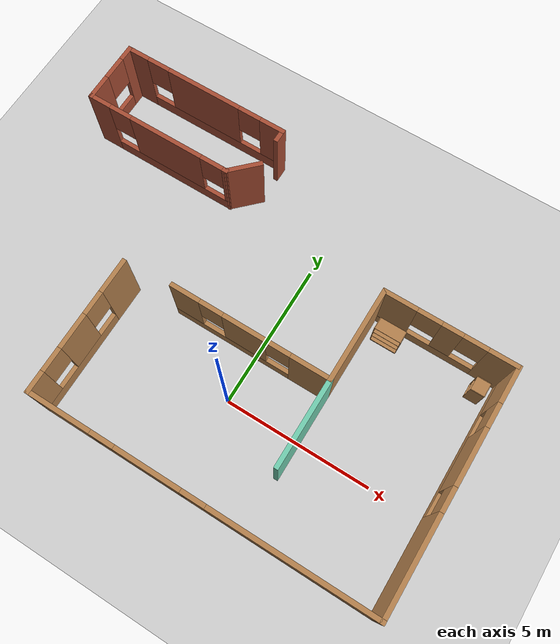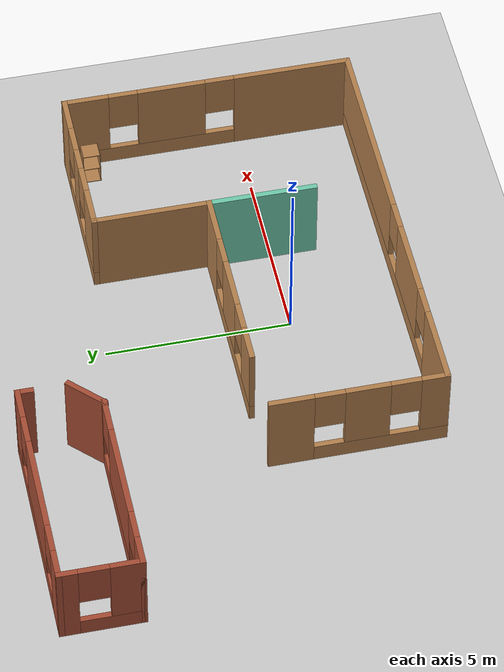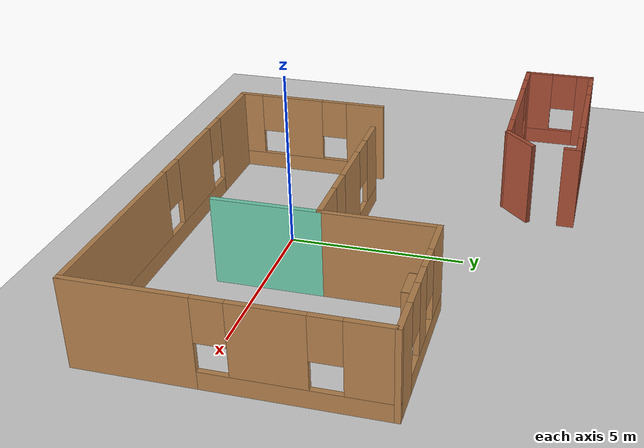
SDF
<sdf version="1.6">
 <world name="default">
  <light name="sun" type="directional">
   <pose>0 0 10 0 -0 0</pose>
   <diffuse>0.8 0.8 0.8 1</diffuse>
   <specular>0.2 0.2 0.2 1</specular>
   <attenuation>
    <range>1000</range>
    <constant>0.9</constant>
    <linear>0.01</linear>
    <quadratic>0.001</quadratic>
   </attenuation>
   <direction>-0.5 0.1 -0.9</direction>
  </light>
  <model name="ground_plane">
   <static>1</static>
   <link name="link">
    <collision name="collision">
     <geometry><plane><normal>0 0 1</normal><size>100 100</size></plane></geometry>
     <surface><friction><ode><mu>100</mu><mu2>50</mu2></ode></friction></surface>
    </collision>
    <visual name="visual">
     <cast_shadows>0</cast_shadows>
     <geometry><plane><normal>0 0 1</normal><size>100 100</size></plane></geometry>
     <material>
      <script><uri>file://media/materials/scripts/gazebo.material</uri><name>Gazebo/Grey</name></script>
     </material>
    </visual>
   </link>
  </model>
  <gravity>0 0 -9.8</gravity>
  <magnetic_field>6e-06 2.3e-05 -4.2e-05</magnetic_field>
  <atmosphere type="adiabatic"/>
  <physics name="default_physics" default="0" type="ode">
   <max_step_size>0.001</max_step_size>
   <real_time_factor>1</real_time_factor>
   <real_time_update_rate>1000</real_time_update_rate>
  </physics>
  <scene><ambient>0.4 0.4 0.4 1</ambient><background>0.7 0.7 0.7 1</background><shadows>1</shadows></scene>
  <spherical_coordinates>
   <surface_model>EARTH_WGS84</surface_model>
   <latitude_deg>0</latitude_deg>
   <longitude_deg>0</longitude_deg>
   <elevation>0</elevation>
   <heading_deg>0</heading_deg>
  </spherical_coordinates>
  <model name="buildingA">
   <pose>-5.69714 6.67517 0 0 -0 0</pose>
   <link name="Wall_0">
    <pose>-2.95444 0.015533 0 0 0 -1.5708</pose>
    <visual name="Wall_0_Visual_0">
     <pose>-0.85042 0 1.25 0 -0 0</pose>
     <geometry><box><size>0.549159 0.15 2.5</size></box></geometry>
     <material>
      <script><uri>file://media/materials/scripts/gazebo.material</uri><name>Gazebo/Bricks</name></script>
      <ambient>1 1 1 1</ambient>
     </material>
     <meta><layer>0</layer></meta>
    </visual>
    <collision name="Wall_0_Collision_0">
     <geometry><box><size>0.549159 0.15 2.5</size></box></geometry>
     <pose>-0.85042 0 1.25 0 -0 0</pose>
    </collision>
    <visual name="Wall_0_Visual_1">
     <pose>0.27458 0 0.25 0 -0 0</pose>
     <geometry><box><size>1.70084 0.15 0.5</size></box></geometry>
     <material>
      <script><uri>file://media/materials/scripts/gazebo.material</uri><name>Gazebo/Bricks</name></script>
      <ambient>1 1 1 1</ambient>
     </material>
     <meta><layer>0</layer></meta>
    </visual>
    <collision name="Wall_0_Collision_1">
     <geometry><box><size>1.70084 0.15 0.5</size></box></geometry>
     <pose>0.27458 0 0.25 0 -0 0</pose>
    </collision>
    <visual name="Wall_0_Visual_2">
     <pose>0.67458 0 1.5 0 -0 0</pose>
     <geometry><box><size>0.900841 0.15 2</size></box></geometry>
     <material>
      <script><uri>file://media/materials/scripts/gazebo.material</uri><name>Gazebo/Bricks</name></script>
      <ambient>1 1 1 1</ambient>
     </material>
     <meta><layer>0</layer></meta>
    </visual>
    <collision name="Wall_0_Collision_2">
     <geometry><box><size>0.900841 0.15 2</size></box></geometry>
     <pose>0.67458 0 1.5 0 -0 0</pose>
    </collision>
    <visual name="Wall_0_Visual_3">
     <pose>-0.175841 0 1.9 0 -0 0</pose>
     <geometry><box><size>0.8 0.15 1.2</size></box></geometry>
     <material>
      <script><uri>file://media/materials/scripts/gazebo.material</uri><name>Gazebo/Bricks</name></script>
      <ambient>1 1 1 1</ambient>
     </material>
     <meta><layer>0</layer></meta>
    </visual>
    <collision name="Wall_0_Collision_3">
     <geometry><box><size>0.8 0.15 1.2</size></box></geometry>
     <pose>-0.175841 0 1.9 0 -0 0</pose>
    </collision>
   </link>
   <link name="Wall_1">
    <pose>-0.404441 -1.03447 0 0 -0 0</pose>
    <visual name="Wall_1_Visual_0">
     <pose>-2.22075 0 1.25 0 -0 0</pose>
     <geometry><box><size>0.808503 0.15 2.5</size></box></geometry>
     <material>
      <script><uri>file://media/materials/scripts/gazebo.material</uri><name>Gazebo/Bricks</name></script>
      <ambient>1 1 1 1</ambient>
     </material>
     <meta><layer>0</layer></meta>
    </visual>
    <collision name="Wall_1_Collision_0">
     <geometry><box><size>0.808503 0.15 2.5</size></box></geometry>
     <pose>-2.22075 0 1.25 0 -0 0</pose>
    </collision>
    <visual name="Wall_1_Visual_1">
     <pose>0.404251 0 0.25 0 -0 0</pose>
     <geometry><box><size>4.4415 0.15 0.5</size></box></geometry>
     <material>
      <script><uri>file://media/materials/scripts/gazebo.material</uri><name>Gazebo/Bricks</name></script>
      <ambient>1 1 1 1</ambient>
     </material>
     <meta><layer>0</layer></meta>
    </visual>
    <collision name="Wall_1_Collision_1">
     <geometry><box><size>4.4415 0.15 0.5</size></box></geometry>
     <pose>0.404251 0 0.25 0 -0 0</pose>
    </collision>
    <visual name="Wall_1_Visual_2">
     <pose>0.303213 0 1.5 0 -0 0</pose>
     <geometry><box><size>2.63942 0.15 2</size></box></geometry>
     <material>
      <script><uri>file://media/materials/scripts/gazebo.material</uri><name>Gazebo/Bricks</name></script>
      <ambient>1 1 1 1</ambient>
     </material>
     <meta><layer>0</layer></meta>
    </visual>
    <collision name="Wall_1_Collision_2">
     <geometry><box><size>2.63942 0.15 2</size></box></geometry>
     <pose>0.303213 0 1.5 0 -0 0</pose>
    </collision>
    <visual name="Wall_1_Visual_3">
     <pose>2.52396 0 1.5 0 -0 0</pose>
     <geometry><box><size>0.202076 0.15 2</size></box></geometry>
     <material>
      <script><uri>file://media/materials/scripts/gazebo.material</uri><name>Gazebo/Bricks</name></script>
      <ambient>1 1 1 1</ambient>
     </material>
     <meta><layer>0</layer></meta>
    </visual>
    <collision name="Wall_1_Collision_3">
     <geometry><box><size>0.202076 0.15 2</size></box></geometry>
     <pose>2.52396 0 1.5 0 -0 0</pose>
    </collision>
    <visual name="Wall_1_Visual_4">
     <pose>-1.4165 0 1.9 0 -0 0</pose>
     <geometry><box><size>0.8 0.15 1.2</size></box></geometry>
     <material>
      <script><uri>file://media/materials/scripts/gazebo.material</uri><name>Gazebo/Bricks</name></script>
      <ambient>1 1 1 1</ambient>
     </material>
     <meta><layer>0</layer></meta>
    </visual>
    <collision name="Wall_1_Collision_4">
     <geometry><box><size>0.8 0.15 1.2</size></box></geometry>
     <pose>-1.4165 0 1.9 0 -0 0</pose>
    </collision>
    <visual name="Wall_1_Visual_5">
     <pose>2.02292 0 1.9 0 -0 0</pose>
     <geometry><box><size>0.8 0.15 1.2</size></box></geometry>
     <material>
      <script><uri>file://media/materials/scripts/gazebo.material</uri><name>Gazebo/Bricks</name></script>
      <ambient>1 1 1 1</ambient>
     </material>
     <meta><layer>0</layer></meta>
    </visual>
    <collision name="Wall_1_Collision_5">
     <geometry><box><size>0.8 0.15 1.2</size></box></geometry>
     <pose>2.02292 0 1.9 0 -0 0</pose>
    </collision>
   </link>
   <link name="Wall_2">
    <collision name="Wall_2_Collision">
     <geometry><box><size>1.25 0.15 2.5</size></box></geometry>
     <pose>0 0 1.25 0 -0 0</pose>
    </collision>
    <visual name="Wall_2_Visual">
     <pose>0 0 1.25 0 -0 0</pose>
     <geometry><box><size>1.25 0.15 2.5</size></box></geometry>
     <material>
      <script><uri>file://media/materials/scripts/gazebo.material</uri><name>Gazebo/Bricks</name></script>
      <ambient>1 1 1 1</ambient>
     </material>
     <meta><layer>0</layer></meta>
    </visual>
    <pose>2.53447 -0.645558 0 0 -0 0.785398</pose>
   </link>
   <link name="Wall_4">
    <pose>-0.029441 1.06553 0 0 -0 0</pose>
    <visual name="Wall_4_Visual_0">
     <pose>-2.58569 0 1.25 0 -0 0</pose>
     <geometry><box><size>0.828616 0.15 2.5</size></box></geometry>
     <material>
      <script><uri>file://media/materials/scripts/gazebo.material</uri><name>Gazebo/Bricks</name></script>
      <ambient>1 1 1 1</ambient>
     </material>
     <meta><layer>0</layer></meta>
    </visual>
    <collision name="Wall_4_Collision_0">
     <geometry><box><size>0.828616 0.15 2.5</size></box></geometry>
     <pose>-2.58569 0 1.25 0 -0 0</pose>
    </collision>
    <visual name="Wall_4_Visual_1">
     <pose>0.414308 0 0.25 0 -0 0</pose>
     <geometry><box><size>5.17138 0.15 0.5</size></box></geometry>
     <material>
      <script><uri>file://media/materials/scripts/gazebo.material</uri><name>Gazebo/Bricks</name></script>
      <ambient>1 1 1 1</ambient>
     </material>
     <meta><layer>0</layer></meta>
    </visual>
    <collision name="Wall_4_Collision_1">
     <geometry><box><size>5.17138 0.15 0.5</size></box></geometry>
     <pose>0.414308 0 0.25 0 -0 0</pose>
    </collision>
    <visual name="Wall_4_Visual_2">
     <pose>-0.03156 0 1.5 0 -0 0</pose>
     <geometry><box><size>2.67965 0.15 2</size></box></geometry>
     <material>
      <script><uri>file://media/materials/scripts/gazebo.material</uri><name>Gazebo/Bricks</name></script>
      <ambient>1 1 1 1</ambient>
     </material>
     <meta><layer>0</layer></meta>
    </visual>
    <collision name="Wall_4_Collision_2">
     <geometry><box><size>2.67965 0.15 2</size></box></geometry>
     <pose>-0.03156 0 1.5 0 -0 0</pose>
    </collision>
    <visual name="Wall_4_Visual_3">
     <pose>2.55413 0 1.5 0 -0 0</pose>
     <geometry><box><size>0.891736 0.15 2</size></box></geometry>
     <material>
      <script><uri>file://media/materials/scripts/gazebo.material</uri><name>Gazebo/Bricks</name></script>
      <ambient>1 1 1 1</ambient>
     </material>
     <meta><layer>0</layer></meta>
    </visual>
    <collision name="Wall_4_Collision_3">
     <geometry><box><size>0.891736 0.15 2</size></box></geometry>
     <pose>2.55413 0 1.5 0 -0 0</pose>
    </collision>
    <visual name="Wall_4_Visual_4">
     <pose>-1.77138 0 1.9 0 -0 0</pose>
     <geometry><box><size>0.8 0.15 1.2</size></box></geometry>
     <material>
      <script><uri>file://media/materials/scripts/gazebo.material</uri><name>Gazebo/Bricks</name></script>
      <ambient>1 1 1 1</ambient>
     </material>
     <meta><layer>0</layer></meta>
    </visual>
    <collision name="Wall_4_Collision_4">
     <geometry><box><size>0.8 0.15 1.2</size></box></geometry>
     <pose>-1.77138 0 1.9 0 -0 0</pose>
    </collision>
    <visual name="Wall_4_Visual_5">
     <pose>1.70826 0 1.9 0 -0 0</pose>
     <geometry><box><size>0.8 0.15 1.2</size></box></geometry>
     <material>
      <script><uri>file://media/materials/scripts/gazebo.material</uri><name>Gazebo/Bricks</name></script>
      <ambient>1 1 1 1</ambient>
     </material>
     <meta><layer>0</layer></meta>
    </visual>
    <collision name="Wall_4_Collision_5">
     <geometry><box><size>0.8 0.15 1.2</size></box></geometry>
     <pose>1.70826 0 1.9 0 -0 0</pose>
    </collision>
   </link>
   <link name="Wall_5">
    <collision name="Wall_5_Collision">
     <geometry><box><size>0.5 0.15 2.5</size></box></geometry>
     <pose>0 0 1.25 0 -0 0</pose>
    </collision>
    <visual name="Wall_5_Visual">
     <pose>0 0 1.25 0 -0 0</pose>
     <geometry><box><size>0.5 0.15 2.5</size></box></geometry>
     <material>
      <script><uri>file://media/materials/scripts/gazebo.material</uri><name>Gazebo/Bricks</name></script>
      <ambient>1 1 1 1</ambient>
     </material>
     <meta><layer>0</layer></meta>
    </visual>
    <pose>2.89556 0.890533 0 0 0 -1.5708</pose>
   </link>
   <static>1</static>
  </model>
  <model name="buildingb">
   <pose>1.18476 0.84989 0 0 -0 0</pose>
   <link name="Wall_10">
    <pose>3.5 3.925 0 0 -0 3.14159</pose>
    <visual name="Wall_10_Visual_0">
     <pose>-1.73572 0 1.25 0 -0 0</pose>
     <geometry><box><size>1.02856 0.15 2.5</size></box></geometry>
     <material>
      <script><uri>file://media/materials/scripts/gazebo.material</uri><name>Gazebo/Wood</name></script>
      <ambient>1 1 1 1</ambient>
     </material>
     <meta><layer>0</layer></meta>
    </visual>
    <collision name="Wall_10_Collision_0">
     <geometry><box><size>1.02856 0.15 2.5</size></box></geometry>
     <pose>-1.73572 0 1.25 0 -0 0</pose>
    </collision>
    <visual name="Wall_10_Visual_1">
     <pose>0.514277 0 0.25 0 -0 0</pose>
     <geometry><box><size>3.47145 0.15 0.5</size></box></geometry>
     <material>
      <script><uri>file://media/materials/scripts/gazebo.material</uri><name>Gazebo/Wood</name></script>
      <ambient>1 1 1 1</ambient>
     </material>
     <meta><layer>0</layer></meta>
    </visual>
    <collision name="Wall_10_Collision_1">
     <geometry><box><size>3.47145 0.15 0.5</size></box></geometry>
     <pose>0.514277 0 0.25 0 -0 0</pose>
    </collision>
    <visual name="Wall_10_Visual_2">
     <pose>-0.077243 0 1.5 0 -0 0</pose>
     <geometry><box><size>0.688404 0.15 2</size></box></geometry>
     <material>
      <script><uri>file://media/materials/scripts/gazebo.material</uri><name>Gazebo/Wood</name></script>
      <ambient>1 1 1 1</ambient>
     </material>
     <meta><layer>0</layer></meta>
    </visual>
    <collision name="Wall_10_Collision_2">
     <geometry><box><size>0.688404 0.15 2</size></box></geometry>
     <pose>-0.077243 0 1.5 0 -0 0</pose>
    </collision>
    <visual name="Wall_10_Visual_3">
     <pose>1.65848 0 1.5 0 -0 0</pose>
     <geometry><box><size>1.18304 0.15 2</size></box></geometry>
     <material>
      <script><uri>file://media/materials/scripts/gazebo.material</uri><name>Gazebo/Wood</name></script>
      <ambient>1 1 1 1</ambient>
     </material>
     <meta><layer>0</layer></meta>
    </visual>
    <collision name="Wall_10_Collision_3">
     <geometry><box><size>1.18304 0.15 2</size></box></geometry>
     <pose>1.65848 0 1.5 0 -0 0</pose>
    </collision>
    <visual name="Wall_10_Visual_4">
     <pose>-0.821445 0 1.9 0 -0 0</pose>
     <geometry><box><size>0.8 0.15 1.2</size></box></geometry>
     <material>
      <script><uri>file://media/materials/scripts/gazebo.material</uri><name>Gazebo/Wood</name></script>
      <ambient>1 1 1 1</ambient>
     </material>
     <meta><layer>0</layer></meta>
    </visual>
    <collision name="Wall_10_Collision_4">
     <geometry><box><size>0.8 0.15 1.2</size></box></geometry>
     <pose>-0.821445 0 1.9 0 -0 0</pose>
    </collision>
    <visual name="Wall_10_Visual_5">
     <pose>0.666959 0 1.9 0 -0 0</pose>
     <geometry><box><size>0.8 0.15 1.2</size></box></geometry>
     <material>
      <script><uri>file://media/materials/scripts/gazebo.material</uri><name>Gazebo/Wood</name></script>
      <ambient>1 1 1 1</ambient>
     </material>
     <meta><layer>0</layer></meta>
    </visual>
    <collision name="Wall_10_Collision_5">
     <geometry><box><size>0.8 0.15 1.2</size></box></geometry>
     <pose>0.666959 0 1.9 0 -0 0</pose>
    </collision>
   </link>
   <link name="Wall_11">
    <collision name="Wall_11_Collision">
     <geometry><box><size>3.25 0.15 2.5</size></box></geometry>
     <pose>0 0 1.25 0 -0 0</pose>
    </collision>
    <visual name="Wall_11_Visual">
     <pose>0 0 1.25 0 -0 0</pose>
     <geometry><box><size>3.25 0.15 2.5</size></box></geometry>
     <material>
      <script><uri>file://media/materials/scripts/gazebo.material</uri><name>Gazebo/Wood</name></script>
      <ambient>1 1 1 1</ambient>
     </material>
     <meta><layer>0</layer></meta>
    </visual>
    <pose>1.325 2.375 0 0 0 -1.5708</pose>
   </link>
   <link name="Wall_12">
    <pose>-1.35 0.825 0 0 -0 3.14159</pose>
    <visual name="Wall_12_Visual_0">
     <pose>-2.05743 0 1.25 0 -0 0</pose>
     <geometry><box><size>1.38513 0.15 2.5</size></box></geometry>
     <material>
      <script><uri>file://media/materials/scripts/gazebo.material</uri><name>Gazebo/Wood</name></script>
      <ambient>1 1 1 1</ambient>
     </material>
     <meta><layer>0</layer></meta>
    </visual>
    <collision name="Wall_12_Collision_0">
     <geometry><box><size>1.38513 0.15 2.5</size></box></geometry>
     <pose>-2.05743 0 1.25 0 -0 0</pose>
    </collision>
    <visual name="Wall_12_Visual_1">
     <pose>0.692565 0 0.25 0 -0 0</pose>
     <geometry><box><size>4.11487 0.15 0.5</size></box></geometry>
     <material>
      <script><uri>file://media/materials/scripts/gazebo.material</uri><name>Gazebo/Wood</name></script>
      <ambient>1 1 1 1</ambient>
     </material>
     <meta><layer>0</layer></meta>
    </visual>
    <collision name="Wall_12_Collision_1">
     <geometry><box><size>4.11487 0.15 0.5</size></box></geometry>
     <pose>0.692565 0 0.25 0 -0 0</pose>
    </collision>
    <visual name="Wall_12_Visual_2">
     <pose>0.181604 0 1.5 0 -0 0</pose>
     <geometry><box><size>1.49295 0.15 2</size></box></geometry>
     <material>
      <script><uri>file://media/materials/scripts/gazebo.material</uri><name>Gazebo/Wood</name></script>
      <ambient>1 1 1 1</ambient>
     </material>
     <meta><layer>0</layer></meta>
    </visual>
    <collision name="Wall_12_Collision_2">
     <geometry><box><size>1.49295 0.15 2</size></box></geometry>
     <pose>0.181604 0 1.5 0 -0 0</pose>
    </collision>
    <visual name="Wall_12_Visual_3">
     <pose>2.23904 0 1.5 0 -0 0</pose>
     <geometry><box><size>1.02192 0.15 2</size></box></geometry>
     <material>
      <script><uri>file://media/materials/scripts/gazebo.material</uri><name>Gazebo/Wood</name></script>
      <ambient>1 1 1 1</ambient>
     </material>
     <meta><layer>0</layer></meta>
    </visual>
    <collision name="Wall_12_Collision_3">
     <geometry><box><size>1.02192 0.15 2</size></box></geometry>
     <pose>2.23904 0 1.5 0 -0 0</pose>
    </collision>
    <visual name="Wall_12_Visual_4">
     <pose>-0.964869 0 1.9 0 -0 0</pose>
     <geometry><box><size>0.8 0.15 1.2</size></box></geometry>
     <material>
      <script><uri>file://media/materials/scripts/gazebo.material</uri><name>Gazebo/Wood</name></script>
      <ambient>1 1 1 1</ambient>
     </material>
     <meta><layer>0</layer></meta>
    </visual>
    <collision name="Wall_12_Collision_4">
     <geometry><box><size>0.8 0.15 1.2</size></box></geometry>
     <pose>-0.964869 0 1.9 0 -0 0</pose>
    </collision>
    <visual name="Wall_12_Visual_5">
     <pose>1.32808 0 1.9 0 -0 0</pose>
     <geometry><box><size>0.8 0.15 1.2</size></box></geometry>
     <material>
      <script><uri>file://media/materials/scripts/gazebo.material</uri><name>Gazebo/Wood</name></script>
      <ambient>1 1 1 1</ambient>
     </material>
     <meta><layer>0</layer></meta>
    </visual>
    <collision name="Wall_12_Collision_5">
     <geometry><box><size>0.8 0.15 1.2</size></box></geometry>
     <pose>1.32808 0 1.9 0 -0 0</pose>
    </collision>
   </link>
   <link name="Wall_14">
    <collision name="Wall_14_Collision">
     <geometry><box><size>3 0.15 2.5</size></box></geometry>
     <pose>0 0 1.25 0 -0 0</pose>
    </collision>
    <visual name="Wall_14_Visual">
     <pose>0 0 1.25 0 -0 0</pose>
     <geometry><box><size>3 0.15 2.5</size></box></geometry>
     <material>
      <script><uri>file://media/materials/scripts/gazebo.material</uri><name>Gazebo/Grey</name></script>
      <ambient>0.435294 0.796078 0.67451 1</ambient>
     </material>
     <meta><layer>0</layer></meta>
    </visual>
    <pose>1.325 -0.6 0 0 0 -1.5708</pose>
   </link>
   <link name="Wall_7">
    <pose>-5.675 -1.625 0 0 0 -1.5708</pose>
    <visual name="Wall_7_Visual_0">
     <pose>-1.77318 0 1.25 0 -0 0</pose>
     <geometry><box><size>1.20363 0.15 2.5</size></box></geometry>
     <material>
      <script><uri>file://media/materials/scripts/gazebo.material</uri><name>Gazebo/Wood</name></script>
      <ambient>1 1 1 1</ambient>
     </material>
     <meta><layer>0</layer></meta>
    </visual>
    <collision name="Wall_7_Collision_0">
     <geometry><box><size>1.20363 0.15 2.5</size></box></geometry>
     <pose>-1.77318 0 1.25 0 -0 0</pose>
    </collision>
    <visual name="Wall_7_Visual_1">
     <pose>0.601816 0 0.25 0 -0 0</pose>
     <geometry><box><size>3.54637 0.15 0.5</size></box></geometry>
     <material>
      <script><uri>file://media/materials/scripts/gazebo.material</uri><name>Gazebo/Wood</name></script>
      <ambient>1 1 1 1</ambient>
     </material>
     <meta><layer>0</layer></meta>
    </visual>
    <collision name="Wall_7_Collision_1">
     <geometry><box><size>3.54637 0.15 0.5</size></box></geometry>
     <pose>0.601816 0 0.25 0 -0 0</pose>
    </collision>
    <visual name="Wall_7_Visual_2">
     <pose>0.224254 0 1.5 0 -0 0</pose>
     <geometry><box><size>1.19124 0.15 2</size></box></geometry>
     <material>
      <script><uri>file://media/materials/scripts/gazebo.material</uri><name>Gazebo/Wood</name></script>
      <ambient>1 1 1 1</ambient>
     </material>
     <meta><layer>0</layer></meta>
    </visual>
    <collision name="Wall_7_Collision_2">
     <geometry><box><size>1.19124 0.15 2</size></box></geometry>
     <pose>0.224254 0 1.5 0 -0 0</pose>
    </collision>
    <visual name="Wall_7_Visual_3">
     <pose>1.99744 0 1.5 0 -0 0</pose>
     <geometry><box><size>0.755125 0.15 2</size></box></geometry>
     <material>
      <script><uri>file://media/materials/scripts/gazebo.material</uri><name>Gazebo/Wood</name></script>
      <ambient>1 1 1 1</ambient>
     </material>
     <meta><layer>0</layer></meta>
    </visual>
    <collision name="Wall_7_Collision_3">
     <geometry><box><size>0.755125 0.15 2</size></box></geometry>
     <pose>1.99744 0 1.5 0 -0 0</pose>
    </collision>
    <visual name="Wall_7_Visual_4">
     <pose>-0.771368 0 1.9 0 -0 0</pose>
     <geometry><box><size>0.8 0.15 1.2</size></box></geometry>
     <material>
      <script><uri>file://media/materials/scripts/gazebo.material</uri><name>Gazebo/Wood</name></script>
      <ambient>1 1 1 1</ambient>
     </material>
     <meta><layer>0</layer></meta>
    </visual>
    <collision name="Wall_7_Collision_4">
     <geometry><box><size>0.8 0.15 1.2</size></box></geometry>
     <pose>-0.771368 0 1.9 0 -0 0</pose>
    </collision>
    <visual name="Wall_7_Visual_5">
     <pose>1.21988 0 1.9 0 -0 0</pose>
     <geometry><box><size>0.8 0.15 1.2</size></box></geometry>
     <material>
      <script><uri>file://media/materials/scripts/gazebo.material</uri><name>Gazebo/Wood</name></script>
      <ambient>1 1 1 1</ambient>
     </material>
     <meta><layer>0</layer></meta>
    </visual>
    <collision name="Wall_7_Collision_5">
     <geometry><box><size>0.8 0.15 1.2</size></box></geometry>
     <pose>1.21988 0 1.9 0 -0 0</pose>
    </collision>
   </link>
   <link name="Wall_8">
    <pose>0 -3.925 0 0 -0 0</pose>
    <visual name="Wall_8_Visual_0">
     <pose>-4.64534 0 1.25 0 -0 0</pose>
     <geometry><box><size>2.20931 0.15 2.5</size></box></geometry>
     <material>
      <script><uri>file://media/materials/scripts/gazebo.material</uri><name>Gazebo/Wood</name></script>
      <ambient>1 1 1 1</ambient>
     </material>
     <meta><layer>0</layer></meta>
    </visual>
    <collision name="Wall_8_Collision_0">
     <geometry><box><size>2.20931 0.15 2.5</size></box></geometry>
     <pose>-4.64534 0 1.25 0 -0 0</pose>
    </collision>
    <visual name="Wall_8_Visual_1">
     <pose>1.10465 0 0.25 0 -0 0</pose>
     <geometry><box><size>9.29069 0.15 0.5</size></box></geometry>
     <material>
      <script><uri>file://media/materials/scripts/gazebo.material</uri><name>Gazebo/Wood</name></script>
      <ambient>1 1 1 1</ambient>
     </material>
     <meta><layer>0</layer></meta>
    </visual>
    <collision name="Wall_8_Collision_1">
     <geometry><box><size>9.29069 0.15 0.5</size></box></geometry>
     <pose>1.10465 0 0.25 0 -0 0</pose>
    </collision>
    <visual name="Wall_8_Visual_2">
     <pose>-1.64223 0 1.5 0 -0 0</pose>
     <geometry><box><size>2.19692 0.15 2</size></box></geometry>
     <material>
      <script><uri>file://media/materials/scripts/gazebo.material</uri><name>Gazebo/Wood</name></script>
      <ambient>1 1 1 1</ambient>
     </material>
     <meta><layer>0</layer></meta>
    </visual>
    <collision name="Wall_8_Collision_2">
     <geometry><box><size>2.19692 0.15 2</size></box></geometry>
     <pose>-1.64223 0 1.5 0 -0 0</pose>
    </collision>
    <visual name="Wall_8_Visual_3">
     <pose>3.00312 0 1.5 0 -0 0</pose>
     <geometry><box><size>5.49377 0.15 2</size></box></geometry>
     <material>
      <script><uri>file://media/materials/scripts/gazebo.material</uri><name>Gazebo/Wood</name></script>
      <ambient>1 1 1 1</ambient>
     </material>
     <meta><layer>0</layer></meta>
    </visual>
    <collision name="Wall_8_Collision_3">
     <geometry><box><size>5.49377 0.15 2</size></box></geometry>
     <pose>3.00312 0 1.5 0 -0 0</pose>
    </collision>
    <visual name="Wall_8_Visual_4">
     <pose>-3.14069 0 1.9 0 -0 0</pose>
     <geometry><box><size>0.8 0.15 1.2</size></box></geometry>
     <material>
      <script><uri>file://media/materials/scripts/gazebo.material</uri><name>Gazebo/Wood</name></script>
      <ambient>1 1 1 1</ambient>
     </material>
     <meta><layer>0</layer></meta>
    </visual>
    <collision name="Wall_8_Collision_4">
     <geometry><box><size>0.8 0.15 1.2</size></box></geometry>
     <pose>-3.14069 0 1.9 0 -0 0</pose>
    </collision>
    <visual name="Wall_8_Visual_5">
     <pose>-0.143768 0 1.9 0 -0 0</pose>
     <geometry><box><size>0.8 0.15 1.2</size></box></geometry>
     <material>
      <script><uri>file://media/materials/scripts/gazebo.material</uri><name>Gazebo/Wood</name></script>
      <ambient>1 1 1 1</ambient>
     </material>
     <meta><layer>0</layer></meta>
    </visual>
    <collision name="Wall_8_Collision_5">
     <geometry><box><size>0.8 0.15 1.2</size></box></geometry>
     <pose>-0.143768 0 1.9 0 -0 0</pose>
    </collision>
   </link>
   <link name="Wall_9">
    <pose>5.675 0 0 0 -0 1.5708</pose>
    <visual name="Wall_9_Visual_0">
     <pose>-2.3754 0 1.25 0 -0 0</pose>
     <geometry><box><size>3.24921 0.15 2.5</size></box></geometry>
     <material>
      <script><uri>file://media/materials/scripts/gazebo.material</uri><name>Gazebo/Wood</name></script>
      <ambient>1 1 1 1</ambient>
     </material>
     <meta><layer>0</layer></meta>
    </visual>
    <collision name="Wall_9_Collision_0">
     <geometry><box><size>3.24921 0.15 2.5</size></box></geometry>
     <pose>-2.3754 0 1.25 0 -0 0</pose>
    </collision>
    <visual name="Wall_9_Visual_1">
     <pose>1.6246 0 0.25 0 -0 0</pose>
     <geometry><box><size>4.75079 0.15 0.5</size></box></geometry>
     <material>
      <script><uri>file://media/materials/scripts/gazebo.material</uri><name>Gazebo/Wood</name></script>
      <ambient>1 1 1 1</ambient>
     </material>
     <meta><layer>0</layer></meta>
    </visual>
    <collision name="Wall_9_Collision_1">
     <geometry><box><size>4.75079 0.15 0.5</size></box></geometry>
     <pose>1.6246 0 0.25 0 -0 0</pose>
    </collision>
    <visual name="Wall_9_Visual_2">
     <pose>0.986761 0 1.5 0 -0 0</pose>
     <geometry><box><size>1.87511 0.15 2</size></box></geometry>
     <material>
      <script><uri>file://media/materials/scripts/gazebo.material</uri><name>Gazebo/Wood</name></script>
      <ambient>1 1 1 1</ambient>
     </material>
     <meta><layer>0</layer></meta>
    </visual>
    <collision name="Wall_9_Collision_2">
     <geometry><box><size>1.87511 0.15 2</size></box></geometry>
     <pose>0.986761 0 1.5 0 -0 0</pose>
    </collision>
    <visual name="Wall_9_Visual_3">
     <pose>3.36216 0 1.5 0 -0 0</pose>
     <geometry><box><size>1.27569 0.15 2</size></box></geometry>
     <material>
      <script><uri>file://media/materials/scripts/gazebo.material</uri><name>Gazebo/Wood</name></script>
      <ambient>1 1 1 1</ambient>
     </material>
     <meta><layer>0</layer></meta>
    </visual>
    <collision name="Wall_9_Collision_3">
     <geometry><box><size>1.27569 0.15 2</size></box></geometry>
     <pose>3.36216 0 1.5 0 -0 0</pose>
    </collision>
    <visual name="Wall_9_Visual_4">
     <pose>-0.350792 0 1.9 0 -0 0</pose>
     <geometry><box><size>0.8 0.15 1.2</size></box></geometry>
     <material>
      <script><uri>file://media/materials/scripts/gazebo.material</uri><name>Gazebo/Wood</name></script>
      <ambient>1 1 1 1</ambient>
     </material>
     <meta><layer>0</layer></meta>
    </visual>
    <collision name="Wall_9_Collision_4">
     <geometry><box><size>0.8 0.15 1.2</size></box></geometry>
     <pose>-0.350792 0 1.9 0 -0 0</pose>
    </collision>
    <visual name="Wall_9_Visual_5">
     <pose>2.32431 0 1.9 0 -0 0</pose>
     <geometry><box><size>0.8 0.15 1.2</size></box></geometry>
     <material>
      <script><uri>file://media/materials/scripts/gazebo.material</uri><name>Gazebo/Wood</name></script>
      <ambient>1 1 1 1</ambient>
     </material>
     <meta><layer>0</layer></meta>
    </visual>
    <collision name="Wall_9_Collision_5">
     <geometry><box><size>0.8 0.15 1.2</size></box></geometry>
     <pose>2.32431 0 1.9 0 -0 0</pose>
    </collision>
   </link>
   <static>1</static>
  </model>
  <model name="bookshelf">
   <static>1</static>
   <link name="link">
    <inertial><mass>1</mass></inertial>
    <collision name="back">
     <pose>0 0.005 0.6 0 -0 0</pose>
     <geometry><box><size>0.9 0.01 1.2</size></box></geometry>
    </collision>
    <visual name="visual1">
     <pose>0 0.005 0.6 0 -0 0</pose>
     <geometry><box><size>0.9 0.01 1.2</size></box></geometry>
     <material>
      <script><uri>file://media/materials/scripts/gazebo.material</uri><name>Gazebo/Wood</name></script>
     </material>
    </visual>
    <collision name="left_side">
     <pose>0.45 -0.195 0.6 0 -0 0</pose>
     <geometry><box><size>0.02 0.4 1.2</size></box></geometry>
    </collision>
    <visual name="visual2">
     <pose>0.45 -0.195 0.6 0 -0 0</pose>
     <geometry><box><size>0.02 0.4 1.2</size></box></geometry>
     <material>
      <script><uri>file://media/materials/scripts/gazebo.material</uri><name>Gazebo/Wood</name></script>
     </material>
    </visual>
    <collision name="right_side">
     <pose>-0.45 -0.195 0.6 0 -0 0</pose>
     <geometry><box><size>0.02 0.4 1.2</size></box></geometry>
    </collision>
    <visual name="visual3">
     <pose>-0.45 -0.195 0.6 0 -0 0</pose>
     <geometry><box><size>0.02 0.4 1.2</size></box></geometry>
     <material>
      <script><uri>file://media/materials/scripts/gazebo.material</uri><name>Gazebo/Wood</name></script>
     </material>
    </visual>
    <collision name="bottom">
     <pose>0 -0.195 0.03 0 -0 0</pose>
     <geometry><box><size>0.88 0.4 0.06</size></box></geometry>
    </collision>
    <visual name="visual4">
     <pose>0 -0.195 0.03 0 -0 0</pose>
     <geometry><box><size>0.88 0.4 0.06</size></box></geometry>
     <material>
      <script><uri>file://media/materials/scripts/gazebo.material</uri><name>Gazebo/Wood</name></script>
     </material>
    </visual>
    <collision name="top">
     <pose>0 -0.195 1.19 0 -0 0</pose>
     <geometry><box><size>0.88 0.4 0.02</size></box></geometry>
    </collision>
    <visual name="visual5">
     <pose>0 -0.195 1.19 0 -0 0</pose>
     <geometry><box><size>0.88 0.4 0.02</size></box></geometry>
     <material>
      <script><uri>file://media/materials/scripts/gazebo.material</uri><name>Gazebo/Wood</name></script>
     </material>
    </visual>
    <collision name="low_shelf">
     <pose>0 -0.195 0.43 0 -0 0</pose>
     <geometry><box><size>0.88 0.4 0.02</size></box></geometry>
    </collision>
    <visual name="visual6">
     <pose>0 -0.195 0.43 0 -0 0</pose>
     <geometry><box><size>0.88 0.4 0.02</size></box></geometry>
     <material>
      <script><uri>file://media/materials/scripts/gazebo.material</uri><name>Gazebo/Wood</name></script>
     </material>
    </visual>
    <collision name="high_shelf">
     <pose>0 -0.195 0.8 0 -0 0</pose>
     <geometry><box><size>0.88 0.4 0.02</size></box></geometry>
    </collision>
    <visual name="visual7">
     <pose>0 -0.195 0.8 0 -0 0</pose>
     <geometry><box><size>0.88 0.4 0.02</size></box></geometry>
     <material>
      <script><uri>file://media/materials/scripts/gazebo.material</uri><name>Gazebo/Wood</name></script>
     </material>
    </visual>
   </link>
   <pose>3.20189 4.46117 0 0 -0 0</pose>
  </model>
  <model name="cabinet">
   <static>1</static>
   <link name="cabinet_bottom_plate">
    <inertial>
     <pose>0 0 -1 0 -0 0</pose>
     <inertia><ixx>2.05</ixx><ixy>0</ixy><ixz>0</ixz><iyy>2.05</iyy><iyz>0</iyz><izz>2.05</izz></inertia>
     <mass>25</mass>
    </inertial>
    <collision name="cabinet_bottom_plate_geom">
     <pose>0 0 0.01 0 -0 0</pose>
     <geometry><box><size>0.45 0.45 0.02</size></box></geometry>
    </collision>
    <visual name="cabinet_bottom_plate_geom_visual">
     <pose>0 0 0.01 0 -0 0</pose>
     <geometry><box><size>0.45 0.45 0.02</size></box></geometry>
     <material>
      <script><uri>file://media/materials/scripts/gazebo.material</uri><name>Gazebo/Wood</name></script>
     </material>
    </visual>
    <collision name="cabinet_bottom_plate_geom_cabinet_back_plate">
     <pose>0.235 0 0.51 0 -0 0</pose>
     <geometry><box><size>0.02 0.45 1.02</size></box></geometry>
    </collision>
    <visual name="cabinet_bottom_plate_geom_cabinet_back_plate_visual">
     <pose>0.235 0 0.51 0 -0 0</pose>
     <geometry><box><size>0.02 0.45 1.02</size></box></geometry>
     <material>
      <script><uri>file://media/materials/scripts/gazebo.material</uri><name>Gazebo/Wood</name></script>
     </material>
    </visual>
    <collision name="cabinet_bottom_plate_geom_cabinet_left_plate">
     <pose>0 0.235 0.51 0 -0 0</pose>
     <geometry><box><size>0.45 0.02 1.02</size></box></geometry>
    </collision>
    <visual name="cabinet_bottom_plate_geom_cabinet_left_plate_visual">
     <pose>0 0.235 0.51 0 -0 0</pose>
     <geometry><box><size>0.45 0.02 1.02</size></box></geometry>
     <material>
      <script><uri>file://media/materials/scripts/gazebo.material</uri><name>Gazebo/Wood</name></script>
     </material>
    </visual>
    <collision name="cabinet_bottom_plate_geom_cabinet_middle_plate">
     <pose>0 0 0.51 0 -0 0</pose>
     <geometry><box><size>0.45 0.45 0.02</size></box></geometry>
    </collision>
    <visual name="cabinet_bottom_plate_geom_cabinet_middle_plate_visual">
     <pose>0 0 0.51 0 -0 0</pose>
     <geometry><box><size>0.45 0.45 0.02</size></box></geometry>
     <material>
      <script><uri>file://media/materials/scripts/gazebo.material</uri><name>Gazebo/Wood</name></script>
     </material>
    </visual>
    <collision name="cabinet_bottom_plate_geom_cabinet_right_plate">
     <pose>0 -0.235 0.51 0 -0 0</pose>
     <geometry><box><size>0.45 0.02 1.02</size></box></geometry>
    </collision>
    <visual name="cabinet_bottom_plate_geom_cabinet_right_plate_visual">
     <pose>0 -0.235 0.51 0 -0 0</pose>
     <geometry><box><size>0.45 0.02 1.02</size></box></geometry>
     <material>
      <script><uri>file://media/materials/scripts/gazebo.material</uri><name>Gazebo/Wood</name></script>
     </material>
    </visual>
    <collision name="cabinet_bottom_plate_geom_cabinet_top_plate">
     <pose>0 0 1.01 0 -0 0</pose>
     <geometry><box><size>0.45 0.45 0.02</size></box></geometry>
    </collision>
    <visual name="cabinet_bottom_plate_geom_cabinet_top_plate_visual">
     <pose>0 0 1.01 0 -0 0</pose>
     <geometry><box><size>0.45 0.45 0.02</size></box></geometry>
     <material>
      <script><uri>file://media/materials/scripts/gazebo.material</uri><name>Gazebo/Wood</name></script>
     </material>
    </visual>
   </link>
   <pose>6.34231 4.20979 0 0 -0 0</pose>
  </model>
  <plugin filename="libcollision_map_creator.so" name="collision_map_creator"/>
 </world>
</sdf>
